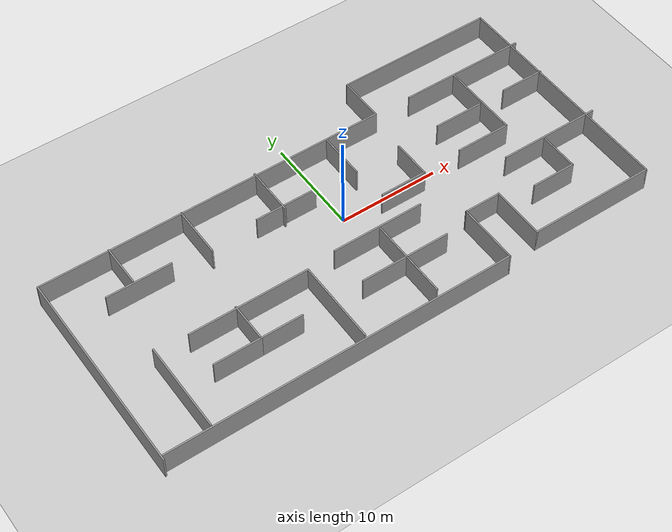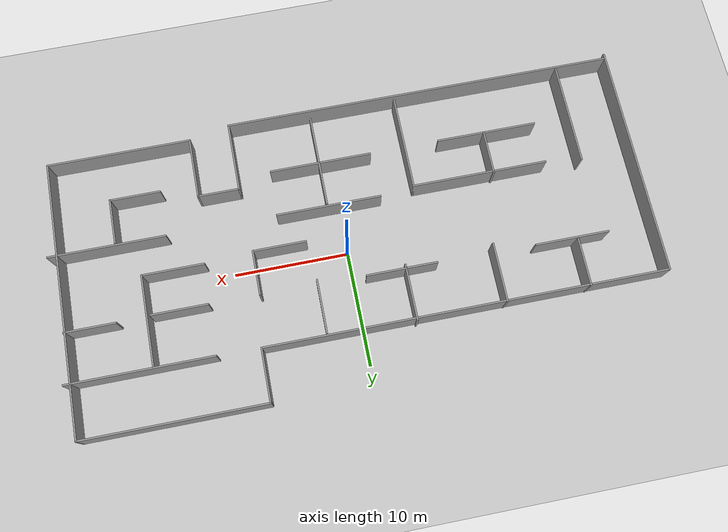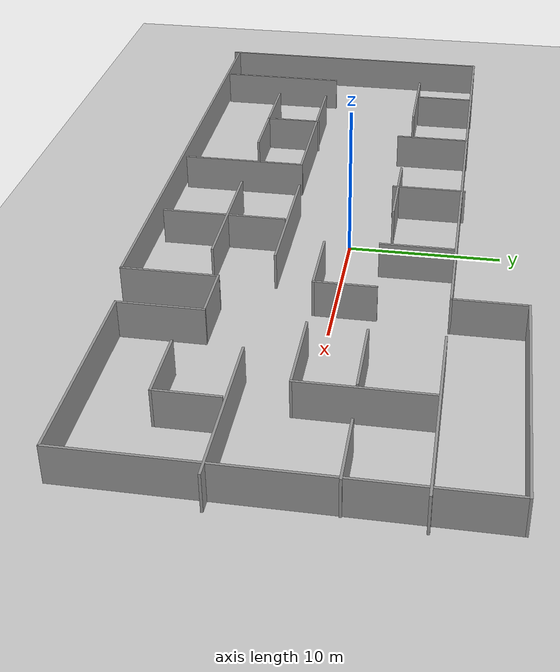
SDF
<sdf version="1.6">
 <world name="default">
  <plugin name="gazebo_connection_plugin" filename="libgazebo_connection_plugin.so"/>
  <light name="sun" type="directional">
   <pose>0 0 10 0 -0 0</pose>
   <diffuse>0.8 0.8 0.8 1</diffuse>
   <specular>0.2 0.2 0.2 1</specular>
   <attenuation>
    <range>1000</range>
    <constant>0.9</constant>
    <linear>0.01</linear>
    <quadratic>0.001</quadratic>
   </attenuation>
   <direction>-0.5 0.1 -0.9</direction>
  </light>
  <model name="ground_plane">
   <static>1</static>
   <link name="link">
    <collision name="collision">
     <geometry><plane><normal>0 0 1</normal><size>60 60</size></plane></geometry>
     <surface><friction><ode><mu>100</mu><mu2>50</mu2></ode></friction></surface>
    </collision>
    <visual name="visual">
     <cast_shadows>0</cast_shadows>
     <geometry><plane><normal>0 0 1</normal><size>60 60</size></plane></geometry>
     <material>
      <script><uri>file://media/materials/scripts/gazebo.material</uri><name>Gazebo/Grey</name></script>
     </material>
    </visual>
   </link>
  </model>
  <gravity>0 0 -9.8</gravity>
  <magnetic_field>6e-06 2.3e-05 -4.2e-05</magnetic_field>
  <atmosphere type="adiabatic"/>
  <physics name="default_physics" default="0" type="ode">
   <max_step_size>0.001</max_step_size>
   <real_time_factor>1</real_time_factor>
   <real_time_update_rate>1000</real_time_update_rate>
  </physics>
  <scene><ambient>0.4 0.4 0.4 1</ambient><background>0.7 0.7 0.7 1</background><shadows>1</shadows></scene>
  <spherical_coordinates>
   <surface_model>EARTH_WGS84</surface_model>
   <latitude_deg>0</latitude_deg>
   <longitude_deg>0</longitude_deg>
   <elevation>0</elevation>
   <heading_deg>0</heading_deg>
  </spherical_coordinates>
  <model name="envA">
   <pose>-0.609182 -0.861046 0 0 -0 0</pose>
   <link name="Wall_11">
    <collision name="Wall_11_Collision">
     <geometry><box><size>34.75 0.15 2.5</size></box></geometry>
     <pose>0 0 1.25 0 -0 0</pose>
    </collision>
    <visual name="Wall_11_Visual">
     <pose>0 0 1.25 0 -0 0</pose>
     <geometry><box><size>34.75 0.15 2.5</size></box></geometry>
     <material>
      <script><uri>file://media/materials/scripts/gazebo.material</uri><name>Gazebo/Grey</name></script>
      <ambient>1 1 1 1</ambient>
     </material>
     <meta><layer>0</layer></meta>
    </visual>
    <pose>-8.40989 -12.25 0 0 -0 0</pose>
   </link>
   <link name="Wall_12">
    <collision name="Wall_12_Collision">
     <geometry><box><size>6.25 0.15 2.5</size></box></geometry>
     <pose>0 0 1.25 0 -0 0</pose>
    </collision>
    <visual name="Wall_12_Visual">
     <pose>0 0 1.25 0 -0 0</pose>
     <geometry><box><size>6.25 0.15 2.5</size></box></geometry>
     <material>
      <script><uri>file://media/materials/scripts/gazebo.material</uri><name>Gazebo/Grey</name></script>
      <ambient>1 1 1 1</ambient>
     </material>
     <meta><layer>0</layer></meta>
    </visual>
    <pose>8.89011 -9.2 0 0 -0 1.5708</pose>
   </link>
   <link name="Wall_13">
    <collision name="Wall_13_Collision">
     <geometry><box><size>3.75 0.15 2.5</size></box></geometry>
     <pose>0 0 1.25 0 -0 0</pose>
    </collision>
    <visual name="Wall_13_Visual">
     <pose>0 0 1.25 0 -0 0</pose>
     <geometry><box><size>3.75 0.15 2.5</size></box></geometry>
     <material>
      <script><uri>file://media/materials/scripts/gazebo.material</uri><name>Gazebo/Grey</name></script>
      <ambient>1 1 1 1</ambient>
     </material>
     <meta><layer>0</layer></meta>
    </visual>
    <pose>10.6901 -6.15 0 0 -0 0</pose>
   </link>
   <link name="Wall_14">
    <collision name="Wall_14_Collision">
     <geometry><box><size>5.5 0.15 2.5</size></box></geometry>
     <pose>0 0 1.25 0 -0 0</pose>
    </collision>
    <visual name="Wall_14_Visual">
     <pose>0 0 1.25 0 -0 0</pose>
     <geometry><box><size>5.5 0.15 2.5</size></box></geometry>
     <material>
      <script><uri>file://media/materials/scripts/gazebo.material</uri><name>Gazebo/Grey</name></script>
      <ambient>1 1 1 1</ambient>
     </material>
     <meta><layer>0</layer></meta>
    </visual>
    <pose>12.4901 -8.825 0 0 0 -1.5708</pose>
   </link>
   <link name="Wall_15">
    <collision name="Wall_15_Collision">
     <geometry><box><size>12.75 0.15 2.5</size></box></geometry>
     <pose>0 0 1.25 0 -0 0</pose>
    </collision>
    <visual name="Wall_15_Visual">
     <pose>0 0 1.25 0 -0 0</pose>
     <geometry><box><size>12.75 0.15 2.5</size></box></geometry>
     <material>
      <script><uri>file://media/materials/scripts/gazebo.material</uri><name>Gazebo/Grey</name></script>
      <ambient>1 1 1 1</ambient>
     </material>
     <meta><layer>0</layer></meta>
    </visual>
    <pose>18.7901 -11.5 0 0 -0 0</pose>
   </link>
   <link name="Wall_16">
    <collision name="Wall_16_Collision">
     <geometry><box><size>24.25 0.15 2.5</size></box></geometry>
     <pose>0 0 1.25 0 -0 0</pose>
    </collision>
    <visual name="Wall_16_Visual">
     <pose>0 0 1.25 0 -0 0</pose>
     <geometry><box><size>24.25 0.15 2.5</size></box></geometry>
     <material>
      <script><uri>file://media/materials/scripts/gazebo.material</uri><name>Gazebo/Grey</name></script>
      <ambient>1 1 1 1</ambient>
     </material>
     <meta><layer>0</layer></meta>
    </visual>
    <pose>25.0901 0.55 0 0 -0 1.5708</pose>
   </link>
   <link name="Wall_17">
    <collision name="Wall_17_Collision">
     <geometry><box><size>16 0.15 2.5</size></box></geometry>
     <pose>0 0 1.25 0 -0 0</pose>
    </collision>
    <visual name="Wall_17_Visual">
     <pose>0 0 1.25 0 -0 0</pose>
     <geometry><box><size>16 0.15 2.5</size></box></geometry>
     <material>
      <script><uri>file://media/materials/scripts/gazebo.material</uri><name>Gazebo/Grey</name></script>
      <ambient>1 1 1 1</ambient>
     </material>
     <meta><layer>0</layer></meta>
    </visual>
    <pose>17.1651 12.6 0 0 -0 3.14159</pose>
   </link>
   <link name="Wall_18">
    <collision name="Wall_18_Collision">
     <geometry><box><size>4.75 0.15 2.5</size></box></geometry>
     <pose>0 0 1.25 0 -0 0</pose>
    </collision>
    <visual name="Wall_18_Visual">
     <pose>0 0 1.25 0 -0 0</pose>
     <geometry><box><size>4.75 0.15 2.5</size></box></geometry>
     <material>
      <script><uri>file://media/materials/scripts/gazebo.material</uri><name>Gazebo/Grey</name></script>
      <ambient>1 1 1 1</ambient>
     </material>
     <meta><layer>0</layer></meta>
    </visual>
    <pose>9.24011 10.3 0 0 0 -1.5708</pose>
   </link>
   <link name="Wall_19">
    <collision name="Wall_19_Collision">
     <geometry><box><size>35.25 0.15 2.5</size></box></geometry>
     <pose>0 0 1.25 0 -0 0</pose>
    </collision>
    <visual name="Wall_19_Visual">
     <pose>0 0 1.25 0 -0 0</pose>
     <geometry><box><size>35.25 0.15 2.5</size></box></geometry>
     <material>
      <script><uri>file://media/materials/scripts/gazebo.material</uri><name>Gazebo/Grey</name></script>
      <ambient>1 1 1 1</ambient>
     </material>
     <meta><layer>0</layer></meta>
    </visual>
    <pose>-8.30989 8 0 0 -0 3.14159</pose>
   </link>
   <link name="Wall_20">
    <collision name="Wall_20_Collision">
     <geometry><box><size>20.75 0.15 2.5</size></box></geometry>
     <pose>0 0 1.25 0 -0 0</pose>
    </collision>
    <visual name="Wall_20_Visual">
     <pose>0 0 1.25 0 -0 0</pose>
     <geometry><box><size>20.75 0.15 2.5</size></box></geometry>
     <material>
      <script><uri>file://media/materials/scripts/gazebo.material</uri><name>Gazebo/Grey</name></script>
      <ambient>1 1 1 1</ambient>
     </material>
     <meta><layer>0</layer></meta>
    </visual>
    <pose>-25.8599 -2.3 0 0 0 -1.5708</pose>
   </link>
   <link name="Wall_22">
    <collision name="Wall_22_Collision">
     <geometry><box><size>4.25 0.15 2.5</size></box></geometry>
     <pose>0 0 1.25 0 -0 0</pose>
    </collision>
    <visual name="Wall_22_Visual">
     <pose>0 0 1.25 0 -0 0</pose>
     <geometry><box><size>4.25 0.15 2.5</size></box></geometry>
     <material>
      <script><uri>file://media/materials/scripts/gazebo.material</uri><name>Gazebo/Grey</name></script>
      <ambient>1 1 1 1</ambient>
     </material>
     <meta><layer>0</layer></meta>
    </visual>
    <pose>-18.9418 6.0042 0 0 0 -1.5708</pose>
   </link>
   <link name="Wall_25">
    <collision name="Wall_25_Collision">
     <geometry><box><size>6.5 0.15 2.5</size></box></geometry>
     <pose>0 0 1.25 0 -0 0</pose>
    </collision>
    <visual name="Wall_25_Visual">
     <pose>0 0 1.25 0 -0 0</pose>
     <geometry><box><size>6.5 0.15 2.5</size></box></geometry>
     <material>
      <script><uri>file://media/materials/scripts/gazebo.material</uri><name>Gazebo/Grey</name></script>
      <ambient>1 1 1 1</ambient>
     </material>
     <meta><layer>0</layer></meta>
    </visual>
    <pose>-18.4741 3.74725 0 0 -0 0</pose>
   </link>
   <link name="Wall_27">
    <collision name="Wall_27_Collision">
     <geometry><box><size>9 0.15 2.5</size></box></geometry>
     <pose>0 0 1.25 0 -0 0</pose>
    </collision>
    <visual name="Wall_27_Visual">
     <pose>0 0 1.25 0 -0 0</pose>
     <geometry><box><size>9 0.15 2.5</size></box></geometry>
     <material>
      <script><uri>file://media/materials/scripts/gazebo.material</uri><name>Gazebo/Grey</name></script>
      <ambient>1 1 1 1</ambient>
     </material>
     <meta><layer>0</layer></meta>
    </visual>
    <pose>-21.1568 -7.56887 0 0 0 -1.5708</pose>
   </link>
   <link name="Wall_29">
    <collision name="Wall_29_Collision">
     <geometry><box><size>12 0.15 2.5</size></box></geometry>
     <pose>0 0 1.25 0 -0 0</pose>
    </collision>
    <visual name="Wall_29_Visual">
     <pose>0 0 1.25 0 -0 0</pose>
     <geometry><box><size>12 0.15 2.5</size></box></geometry>
     <material>
      <script><uri>file://media/materials/scripts/gazebo.material</uri><name>Gazebo/Grey</name></script>
      <ambient>1 1 1 1</ambient>
     </material>
     <meta><layer>0</layer></meta>
    </visual>
    <pose>-12.0324 -3.51304 0 0 -0 0</pose>
   </link>
   <link name="Wall_30">
    <collision name="Wall_30_Collision">
     <geometry><box><size>8.5 0.15 2.5</size></box></geometry>
     <pose>0 0 1.25 0 -0 0</pose>
    </collision>
    <visual name="Wall_30_Visual">
     <pose>0 0 1.25 0 -0 0</pose>
     <geometry><box><size>8.5 0.15 2.5</size></box></geometry>
     <material>
      <script><uri>file://media/materials/scripts/gazebo.material</uri><name>Gazebo/Grey</name></script>
      <ambient>1 1 1 1</ambient>
     </material>
     <meta><layer>0</layer></meta>
    </visual>
    <pose>-6.10738 -7.68804 0 0 0 -1.5708</pose>
   </link>
   <link name="Wall_32">
    <collision name="Wall_32_Collision">
     <geometry><box><size>4 0.15 2.5</size></box></geometry>
     <pose>0 0 1.25 0 -0 0</pose>
    </collision>
    <visual name="Wall_32_Visual">
     <pose>0 0 1.25 0 -0 0</pose>
     <geometry><box><size>4 0.15 2.5</size></box></geometry>
     <material>
      <script><uri>file://media/materials/scripts/gazebo.material</uri><name>Gazebo/Grey</name></script>
      <ambient>1 1 1 1</ambient>
     </material>
     <meta><layer>0</layer></meta>
    </visual>
    <pose>-13.2813 -5.31499 0 0 0 -1.5708</pose>
   </link>
   <link name="Wall_33">
    <collision name="Wall_33_Collision">
     <geometry><box><size>4.75 0.15 2.5</size></box></geometry>
     <pose>0 0 1.25 0 -0 0</pose>
    </collision>
    <visual name="Wall_33_Visual">
     <pose>0 0 1.25 0 -0 0</pose>
     <geometry><box><size>4.75 0.15 2.5</size></box></geometry>
     <material>
      <script><uri>file://media/materials/scripts/gazebo.material</uri><name>Gazebo/Grey</name></script>
      <ambient>1 1 1 1</ambient>
     </material>
     <meta><layer>0</layer></meta>
    </visual>
    <pose>-15.5813 -7.23999 0 0 -0 3.14159</pose>
   </link>
   <link name="Wall_35">
    <collision name="Wall_35_Collision">
     <geometry><box><size>4.25 0.15 2.5</size></box></geometry>
     <pose>0 0 1.25 0 -0 0</pose>
    </collision>
    <visual name="Wall_35_Visual">
     <pose>0 0 1.25 0 -0 0</pose>
     <geometry><box><size>4.25 0.15 2.5</size></box></geometry>
     <material>
      <script><uri>file://media/materials/scripts/gazebo.material</uri><name>Gazebo/Grey</name></script>
      <ambient>1 1 1 1</ambient>
     </material>
     <meta><layer>0</layer></meta>
    </visual>
    <pose>-11.2313 -7.23999 0 0 -0 0</pose>
   </link>
   <link name="Wall_37">
    <collision name="Wall_37_Collision">
     <geometry><box><size>5.25 0.15 2.5</size></box></geometry>
     <pose>0 0 1.25 0 -0 0</pose>
    </collision>
    <visual name="Wall_37_Visual">
     <pose>0 0 1.25 0 -0 0</pose>
     <geometry><box><size>5.25 0.15 2.5</size></box></geometry>
     <material>
      <script><uri>file://media/materials/scripts/gazebo.material</uri><name>Gazebo/Grey</name></script>
      <ambient>1 1 1 1</ambient>
     </material>
     <meta><layer>0</layer></meta>
    </visual>
    <pose>-11.6815 5.5042 0 0 0 -1.5708</pose>
   </link>
   <link name="Wall_39">
    <collision name="Wall_39_Collision">
     <geometry><box><size>5 0.15 2.5</size></box></geometry>
     <pose>0 0 1.25 0 -0 0</pose>
    </collision>
    <visual name="Wall_39_Visual">
     <pose>0 0 1.25 0 -0 0</pose>
     <geometry><box><size>5 0.15 2.5</size></box></geometry>
     <material>
      <script><uri>file://media/materials/scripts/gazebo.material</uri><name>Gazebo/Grey</name></script>
      <ambient>1 1 1 1</ambient>
     </material>
     <meta><layer>0</layer></meta>
    </visual>
    <pose>-3.92903 5.75225 0 0 0 -1.5708</pose>
   </link>
   <link name="Wall_41">
    <collision name="Wall_41_Collision">
     <geometry><box><size>6.25 0.15 2.5</size></box></geometry>
     <pose>0 0 1.25 0 -0 0</pose>
    </collision>
    <visual name="Wall_41_Visual">
     <pose>0 0 1.25 0 -0 0</pose>
     <geometry><box><size>6.25 0.15 2.5</size></box></geometry>
     <material>
      <script><uri>file://media/materials/scripts/gazebo.material</uri><name>Gazebo/Grey</name></script>
      <ambient>1 1 1 1</ambient>
     </material>
     <meta><layer>0</layer></meta>
    </visual>
    <pose>-3.58625 3.62419 0 0 -0 0</pose>
   </link>
   <link name="Wall_43">
    <collision name="Wall_43_Collision">
     <geometry><box><size>4.75 0.15 2.5</size></box></geometry>
     <pose>0 0 1.25 0 -0 0</pose>
    </collision>
    <visual name="Wall_43_Visual">
     <pose>0 0 1.25 0 -0 0</pose>
     <geometry><box><size>4.75 0.15 2.5</size></box></geometry>
     <material>
      <script><uri>file://media/materials/scripts/gazebo.material</uri><name>Gazebo/Grey</name></script>
      <ambient>1 1 1 1</ambient>
     </material>
     <meta><layer>0</layer></meta>
    </visual>
    <pose>3.70043 5.50809 0 0 0 -1.5708</pose>
   </link>
   <link name="Wall_45">
    <collision name="Wall_45_Collision">
     <geometry><box><size>9.25 0.15 2.5</size></box></geometry>
     <pose>0 0 1.25 0 -0 0</pose>
    </collision>
    <visual name="Wall_45_Visual">
     <pose>0 0 1.25 0 -0 0</pose>
     <geometry><box><size>9.25 0.15 2.5</size></box></geometry>
     <material>
      <script><uri>file://media/materials/scripts/gazebo.material</uri><name>Gazebo/Grey</name></script>
      <ambient>1 1 1 1</ambient>
     </material>
     <meta><layer>0</layer></meta>
    </visual>
    <pose>1.48236 -3.14387 0 0 -0 0</pose>
   </link>
   <link name="Wall_47">
    <collision name="Wall_47_Collision">
     <geometry><box><size>8.25 0.15 2.5</size></box></geometry>
     <pose>0 0 1.25 0 -0 0</pose>
    </collision>
    <visual name="Wall_47_Visual">
     <pose>0 0 1.25 0 -0 0</pose>
     <geometry><box><size>8.25 0.15 2.5</size></box></geometry>
     <material>
      <script><uri>file://media/materials/scripts/gazebo.material</uri><name>Gazebo/Grey</name></script>
      <ambient>1 1 1 1</ambient>
     </material>
     <meta><layer>0</layer></meta>
    </visual>
    <pose>1.60848 -7.43999 0 0 0 -1.5708</pose>
   </link>
   <link name="Wall_49">
    <collision name="Wall_49_Collision">
     <geometry><box><size>9 0.15 2.5</size></box></geometry>
     <pose>0 0 1.25 0 -0 0</pose>
    </collision>
    <visual name="Wall_49_Visual">
     <pose>0 0 1.25 0 -0 0</pose>
     <geometry><box><size>9 0.15 2.5</size></box></geometry>
     <material>
      <script><uri>file://media/materials/scripts/gazebo.material</uri><name>Gazebo/Grey</name></script>
      <ambient>1 1 1 1</ambient>
     </material>
     <meta><layer>0</layer></meta>
    </visual>
    <pose>1.48042 -7.20472 0 0 -0 0</pose>
   </link>
   <link name="Wall_51">
    <collision name="Wall_51_Collision">
     <geometry><box><size>4 0.15 2.5</size></box></geometry>
     <pose>0 0 1.25 0 -0 0</pose>
    </collision>
    <visual name="Wall_51_Visual">
     <pose>0 0 1.25 0 -0 0</pose>
     <geometry><box><size>4 0.15 2.5</size></box></geometry>
     <material>
      <script><uri>file://media/materials/scripts/gazebo.material</uri><name>Gazebo/Grey</name></script>
      <ambient>1 1 1 1</ambient>
     </material>
     <meta><layer>0</layer></meta>
    </visual>
    <pose>8.62266 1.57614 0 0 0 -1.5708</pose>
   </link>
   <link name="Wall_52">
    <collision name="Wall_52_Collision">
     <geometry><box><size>4.75 0.15 2.5</size></box></geometry>
     <pose>0 0 1.25 0 -0 0</pose>
    </collision>
    <visual name="Wall_52_Visual">
     <pose>0 0 1.25 0 -0 0</pose>
     <geometry><box><size>4.75 0.15 2.5</size></box></geometry>
     <material>
      <script><uri>file://media/materials/scripts/gazebo.material</uri><name>Gazebo/Grey</name></script>
      <ambient>1 1 1 1</ambient>
     </material>
     <meta><layer>0</layer></meta>
    </visual>
    <pose>6.32266 -0.348864 0 0 -0 3.14159</pose>
   </link>
   <link name="Wall_54">
    <collision name="Wall_54_Collision">
     <geometry><box><size>10.25 0.15 2.5</size></box></geometry>
     <pose>0 0 1.25 0 -0 0</pose>
    </collision>
    <visual name="Wall_54_Visual">
     <pose>0 0 1.25 0 -0 0</pose>
     <geometry><box><size>10.25 0.15 2.5</size></box></geometry>
     <material>
      <script><uri>file://media/materials/scripts/gazebo.material</uri><name>Gazebo/Grey</name></script>
      <ambient>1 1 1 1</ambient>
     </material>
     <meta><layer>0</layer></meta>
    </visual>
    <pose>20.8099 -3.14387 0 0 -0 0</pose>
   </link>
   <link name="Wall_56">
    <collision name="Wall_56_Collision">
     <geometry><box><size>4 0.15 2.5</size></box></geometry>
     <pose>0 0 1.25 0 -0 0</pose>
    </collision>
    <visual name="Wall_56_Visual">
     <pose>0 0 1.25 0 -0 0</pose>
     <geometry><box><size>4 0.15 2.5</size></box></geometry>
     <material>
      <script><uri>file://media/materials/scripts/gazebo.material</uri><name>Gazebo/Grey</name></script>
      <ambient>1 1 1 1</ambient>
     </material>
     <meta><layer>0</layer></meta>
    </visual>
    <pose>20.0668 -5.31499 0 0 0 -1.5708</pose>
   </link>
   <link name="Wall_57">
    <collision name="Wall_57_Collision">
     <geometry><box><size>4.5 0.15 2.5</size></box></geometry>
     <pose>0 0 1.25 0 -0 0</pose>
    </collision>
    <visual name="Wall_57_Visual">
     <pose>0 0 1.25 0 -0 0</pose>
     <geometry><box><size>4.5 0.15 2.5</size></box></geometry>
     <material>
      <script><uri>file://media/materials/scripts/gazebo.material</uri><name>Gazebo/Grey</name></script>
      <ambient>1 1 1 1</ambient>
     </material>
     <meta><layer>0</layer></meta>
    </visual>
    <pose>17.8918 -7.23999 0 0 -0 3.14159</pose>
   </link>
   <link name="Wall_59">
    <collision name="Wall_59_Collision">
     <geometry><box><size>12.75 0.15 2.5</size></box></geometry>
     <pose>0 0 1.25 0 -0 0</pose>
    </collision>
    <visual name="Wall_59_Visual">
     <pose>0 0 1.25 0 -0 0</pose>
     <geometry><box><size>12.75 0.15 2.5</size></box></geometry>
     <material>
      <script><uri>file://media/materials/scripts/gazebo.material</uri><name>Gazebo/Grey</name></script>
      <ambient>1 1 1 1</ambient>
     </material>
     <meta><layer>0</layer></meta>
    </visual>
    <pose>19.3527 7.93114 0 0 -0 0</pose>
   </link>
   <link name="Wall_61">
    <collision name="Wall_61_Collision">
     <geometry><box><size>8 0.15 2.5</size></box></geometry>
     <pose>0 0 1.25 0 -0 0</pose>
    </collision>
    <visual name="Wall_61_Visual">
     <pose>0 0 1.25 0 -0 0</pose>
     <geometry><box><size>8 0.15 2.5</size></box></geometry>
     <material>
      <script><uri>file://media/materials/scripts/gazebo.material</uri><name>Gazebo/Grey</name></script>
      <ambient>1 1 1 1</ambient>
     </material>
     <meta><layer>0</layer></meta>
    </visual>
    <pose>18.221 3.88309 0 0 0 -1.5708</pose>
   </link>
   <link name="Wall_62">
    <collision name="Wall_62_Collision">
     <geometry><box><size>5.5 0.15 2.5</size></box></geometry>
     <pose>0 0 1.25 0 -0 0</pose>
    </collision>
    <visual name="Wall_62_Visual">
     <pose>0 0 1.25 0 -0 0</pose>
     <geometry><box><size>5.5 0.15 2.5</size></box></geometry>
     <material>
      <script><uri>file://media/materials/scripts/gazebo.material</uri><name>Gazebo/Grey</name></script>
      <ambient>1 1 1 1</ambient>
     </material>
     <meta><layer>0</layer></meta>
    </visual>
    <pose>15.546 -0.041913 0 0 -0 3.14159</pose>
   </link>
   <link name="Wall_64">
    <collision name="Wall_64_Collision">
     <geometry><box><size>5 0.15 2.5</size></box></geometry>
     <pose>0 0 1.25 0 -0 0</pose>
    </collision>
    <visual name="Wall_64_Visual">
     <pose>0 0 1.25 0 -0 0</pose>
     <geometry><box><size>5 0.15 2.5</size></box></geometry>
     <material>
      <script><uri>file://media/materials/scripts/gazebo.material</uri><name>Gazebo/Grey</name></script>
      <ambient>1 1 1 1</ambient>
     </material>
     <meta><layer>0</layer></meta>
    </visual>
    <pose>15.4777 3.50114 0 0 -0 0</pose>
   </link>
   <link name="Wall_68">
    <collision name="Wall_68_Collision">
     <geometry><box><size>4.5 0.15 2.5</size></box></geometry>
     <pose>0 0 1.25 0 -0 0</pose>
    </collision>
    <visual name="Wall_68_Visual">
     <pose>0 0 1.25 0 -0 0</pose>
     <geometry><box><size>4.5 0.15 2.5</size></box></geometry>
     <material>
      <script><uri>file://media/materials/scripts/gazebo.material</uri><name>Gazebo/Grey</name></script>
      <ambient>1 1 1 1</ambient>
     </material>
     <meta><layer>0</layer></meta>
    </visual>
    <pose>23.0032 3.60225 0 0 -0 0</pose>
   </link>
   <static>1</static>
  </model>
 </world>
</sdf>
